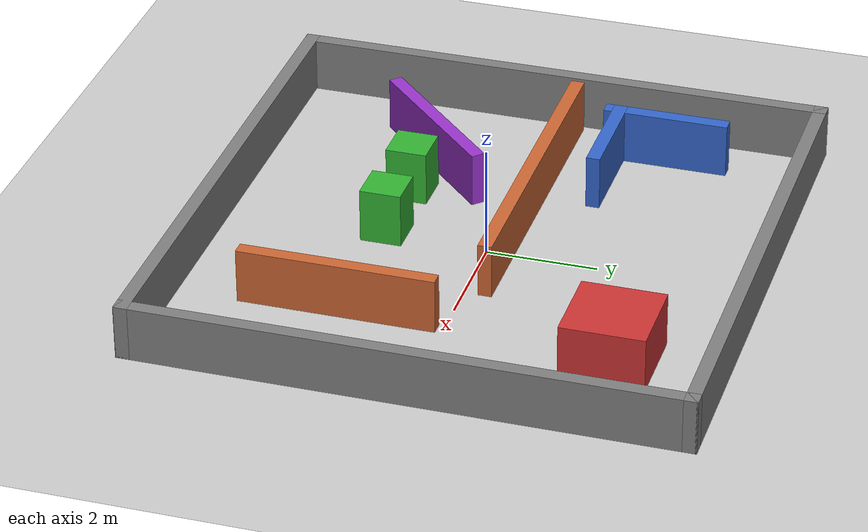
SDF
<?xml version="1.0" ?>
<sdf version="1.9">
  <world name="sim_empty_world">

    <!-- 物理引擎：DART（比 ODE 更适合简单仿真） -->
    <physics name="default_physics" type="dart">
      <max_step_size>0.01</max_step_size>
      <real_time_factor>1.0</real_time_factor>
      <real_time_update_rate>100</real_time_update_rate>
      <dart>
        <solver>
          <solver_type>dantzig</solver_type>
        </solver>
      </dart>
    </physics>

    <!-- 必需的系统插件 -->
    <plugin filename="ignition-gazebo-physics-system"
            name="ignition::gazebo::systems::Physics">
    </plugin>
    <plugin filename="ignition-gazebo-user-commands-system"
            name="ignition::gazebo::systems::UserCommands">
    </plugin>
    <plugin filename="ignition-gazebo-scene-broadcaster-system"
            name="ignition::gazebo::systems::SceneBroadcaster">
    </plugin>
    <plugin filename="ignition-gazebo-sensors-system"
            name="ignition::gazebo::systems::Sensors">
      <render_engine>ogre2</render_engine>
    </plugin>
    <plugin filename="ignition-gazebo-contact-system"
            name="ignition::gazebo::systems::Contact">
    </plugin>

    <!-- 光照 -->
    <light type="directional" name="sun">
      <cast_shadows>true</cast_shadows>
      <pose>0 0 10 0 0 0</pose>
      <diffuse>0.8 0.8 0.8 1</diffuse>
      <specular>0.2 0.2 0.2 1</specular>
      <attenuation>
        <range>1000</range>
        <constant>0.9</constant>
        <linear>0.01</linear>
        <quadratic>0.001</quadratic>
      </attenuation>
      <direction>-0.5 0.1 -0.9</direction>
    </light>

    <!-- 地面 -->
    <model name="ground_plane">
      <static>true</static>
      <link name="link">
        <collision name="collision">
          <geometry>
            <plane>
              <normal>0 0 1</normal>
              <size>100 100</size>
            </plane>
          </geometry>
        </collision>
        <visual name="visual">
          <geometry>
            <plane>
              <normal>0 0 1</normal>
              <size>100 100</size>
            </plane>
          </geometry>
          <material>
            <ambient>0.8 0.8 0.8 1</ambient>
            <diffuse>0.8 0.8 0.8 1</diffuse>
            <specular>0.8 0.8 0.8 1</specular>
          </material>
        </visual>
      </link>
    </model>

    <!-- 场景设置 -->
    <scene>
      <ambient>0.4 0.4 0.4 1</ambient>
      <background>0.7 0.8 0.9 1</background>
      <shadows>true</shadows>
    </scene>

    <gravity>0 0 -9.8</gravity>

    <!-- 外围高墙 (4面独立墙体) -->
    <model name="wall_outer_left"><static>true</static><link name="link">
      <collision name="c"><geometry><box><size>0.25 10.0 1.0</size></box></geometry></collision>
      <visual name="v"><geometry><box><size>0.25 10.0 1.0</size></box></geometry>
        <material><ambient>0.4 0.4 0.4 1</ambient><diffuse>0.5 0.5 0.5 1</diffuse></material></visual>
      <pose>-4.875 0.0 0.5 0 0 0</pose></link></model>

    <model name="wall_outer_right"><static>true</static><link name="link">
      <collision name="c"><geometry><box><size>0.25 10.0 1.0</size></box></geometry></collision>
      <visual name="v"><geometry><box><size>0.25 10.0 1.0</size></box></geometry>
        <material><ambient>0.4 0.4 0.4 1</ambient><diffuse>0.5 0.5 0.5 1</diffuse></material></visual>
      <pose>4.875 0.0 0.5 0 0 0</pose></link></model>

    <model name="wall_outer_top"><static>true</static><link name="link">
      <collision name="c"><geometry><box><size>10.0 0.25 1.0</size></box></geometry></collision>
      <visual name="v"><geometry><box><size>10.0 0.25 1.0</size></box></geometry>
        <material><ambient>0.4 0.4 0.4 1</ambient><diffuse>0.5 0.5 0.5 1</diffuse></material></visual>
      <pose>0.0 4.875 0.5 0 0 0</pose></link></model>

    <model name="wall_outer_bottom"><static>true</static><link name="link">
      <collision name="c"><geometry><box><size>10.0 0.25 1.0</size></box></geometry></collision>
      <visual name="v"><geometry><box><size>10.0 0.25 1.0</size></box></geometry>
        <material><ambient>0.4 0.4 0.4 1</ambient><diffuse>0.5 0.5 0.5 1</diffuse></material></visual>
      <pose>0.0 -4.875 0.5 0 0 0</pose></link></model>

    <!-- 方块障碍物(右上) r1=25 c1=140 r2=55 c2=170 -->
    <model name="wall_block_ur"><static>true</static><link name="link">
      <collision name="c"><geometry><box><size>1.5 1.5 1.0</size></box></geometry></collision>
      <visual name="v"><geometry><box><size>1.5 1.5 1.0</size></box></geometry>
        <material><ambient>0.8 0.2 0.2 1</ambient><diffuse>0.8 0.2 0.2 1</diffuse></material></visual>
      <pose>2.75 3.0 0.5 0 0 0</pose></link></model>

    <!-- L形隔墙(左上) 竖段:r1=32 c1=22 r2=78 c2=27 -->
    <model name="wall_L_vert"><static>true</static><link name="link">
      <collision name="c"><geometry><box><size>0.25 2.3 1.0</size></box></geometry></collision>
      <visual name="v"><geometry><box><size>0.25 2.3 1.0</size></box></geometry>
        <material><ambient>0.2 0.4 0.8 1</ambient><diffuse>0.2 0.4 0.8 1</diffuse></material></visual>
      <pose>-3.875 2.25 0.5 0 0 0</pose></link></model>

    <!-- L形隔墙(左上) 横段:r1=73 c1=22 r2=78 c2=62 -->
    <model name="wall_L_horiz"><static>true</static><link name="link">
      <collision name="c"><geometry><box><size>2.0 0.25 1.0</size></box></geometry></collision>
      <visual name="v"><geometry><box><size>2.0 0.25 1.0</size></box></geometry>
        <material><ambient>0.2 0.4 0.8 1</ambient><diffuse>0.2 0.4 0.8 1</diffuse></material></visual>
      <pose>-3.0 1.375 0.5 0 0 0</pose></link></model>

    <!-- 水平隔断 r1=90 c1=7 r2=95 c2=128 -->
    <model name="wall_h_wall"><static>true</static><link name="link">
      <collision name="c"><geometry><box><size>6.05 0.25 1.0</size></box></geometry></collision>
      <visual name="v"><geometry><box><size>6.05 0.25 1.0</size></box></geometry>
        <material><ambient>0.8 0.4 0.2 1</ambient><diffuse>0.8 0.4 0.2 1</diffuse></material></visual>
      <pose>-1.625 0.375 0.5 0 0 0</pose></link></model>

    <!-- 竖向隔断(右) r1=102 c1=150 r2=173 c2=155 -->
    <model name="wall_v_wall_r"><static>true</static><link name="link">
      <collision name="c"><geometry><box><size>0.25 3.55 1.0</size></box></geometry></collision>
      <visual name="v"><geometry><box><size>0.25 3.55 1.0</size></box></geometry>
        <material><ambient>0.8 0.4 0.2 1</ambient><diffuse>0.8 0.4 0.2 1</diffuse></material></visual>
      <pose>2.625 -1.875 0.5 0 0 0</pose></link></model>

    <!-- 45°斜墙 r1=112 c1=22 r2=158 c2=71 -->
    <model name="wall_diagonal"><static>true</static><link name="link">
      <collision name="c"><geometry><box><size>3.2 0.25 1.0</size></box></geometry></collision>
      <visual name="v"><geometry><box><size>3.2 0.25 1.0</size></box></geometry>
        <material><ambient>0.6 0.2 0.8 1</ambient><diffuse>0.6 0.2 0.8 1</diffuse></material></visual>
      <pose>-2.675 -1.75 0.5 0 0 0.7854</pose></link></model>

    <!-- 小方柱左 r1=130 c1=60 r2=145 c2=75 -->
    <model name="wall_pillar_l"><static>true</static><link name="link">
      <collision name="c"><geometry><box><size>0.75 0.75 1.0</size></box></geometry></collision>
      <visual name="v"><geometry><box><size>0.75 0.75 1.0</size></box></geometry>
        <material><ambient>0.2 0.7 0.2 1</ambient><diffuse>0.2 0.7 0.2 1</diffuse></material></visual>
      <pose>-1.625 -1.875 0.5 0 0 0</pose></link></model>

    <!-- 小方柱右 r1=130 c1=90 r2=145 c2=105 -->
    <model name="wall_pillar_r"><static>true</static><link name="link">
      <collision name="c"><geometry><box><size>0.75 0.75 1.0</size></box></geometry></collision>
      <visual name="v"><geometry><box><size>0.75 0.75 1.0</size></box></geometry>
        <material><ambient>0.2 0.7 0.2 1</ambient><diffuse>0.2 0.7 0.2 1</diffuse></material></visual>
      <pose>-0.125 -1.875 0.5 0 0 0</pose></link></model>

  </world>
</sdf>
